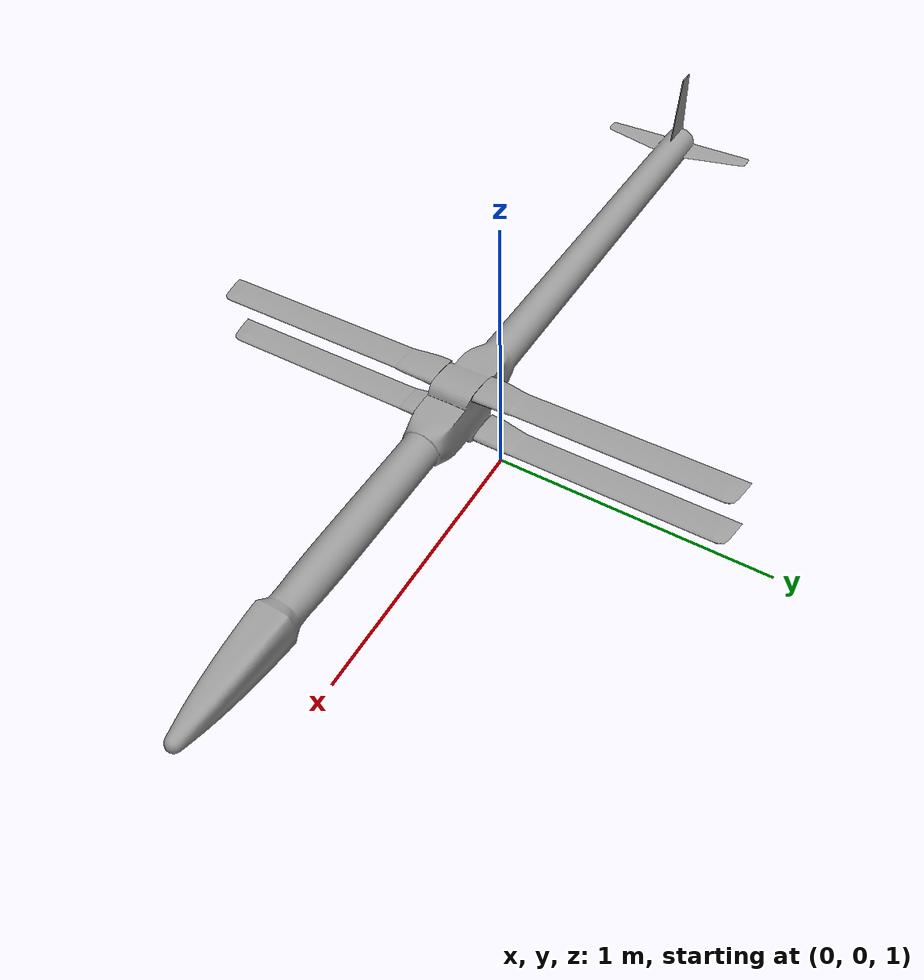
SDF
<?xml version='1.0'?>
<sdf version='1.6'>
  <model name='pitcheron'>

    <link name='base_link'>
      <inertial>
        <mass>47</mass>
        <pose frame=''>0 0 0 0 -0 0</pose>
        <inertia>
          <ixx>0.11644594</ixx>
          <ixy>0</ixy>
          <ixz>0</ixz>
          <iyy>36.28891523</iyy>
          <iyz>0</iyz>
          <izz>36.18768153</izz>
        </inertia>
      </inertial>
      <pose frame=''>0.25 0 1.490810 0 -0 0</pose>
      <gravity>1</gravity>
      <visual name='base_link_visual'>
        <pose frame=''>0 0 0.020000 0 0 3.14159</pose>
        <geometry>
          <mesh>
            <scale>0.001 0.001 0.001</scale>
            <uri>model://pitcheron/mesh/AnalyseModel-Fuselage-003.dae</uri>
          </mesh>
        </geometry>
        <material>
          <script>
            <uri>file://media/materials/scripts/gazebo.material</uri>
            <name>Gazebo/Grey</name>
          </script>
        </material>
        <transparency>0</transparency>
        <cast_shadows>1</cast_shadows>
      </visual>
      <collision name='base_link_collision'>
        <laser_retro>0</laser_retro>
        <max_contacts>10</max_contacts>
        <pose frame=''>0 0 0 0 -0 0</pose>
        <geometry>
          <box>
            <size>3.03932 0.0440676 0.1667</size>
          </box>
        </geometry>
        <surface>
          <friction>
            <ode>
              <mu>1</mu>
              <mu2>1</mu2>
              <fdir1>0 0 0</fdir1>
              <slip1>0</slip1>
              <slip2>0</slip2>
            </ode>
            <torsional>
              <coefficient>1</coefficient>
              <patch_radius>0</patch_radius>
              <surface_radius>0</surface_radius>
              <use_patch_radius>1</use_patch_radius>
              <ode>
                <slip>0</slip>
              </ode>
            </torsional>
          </friction>
          <bounce>
            <restitution_coefficient>0</restitution_coefficient>
            <threshold>1e+06</threshold>
          </bounce>
          <contact>
            <collide_without_contact>0</collide_without_contact>
            <collide_without_contact_bitmask>1</collide_without_contact_bitmask>
            <collide_bitmask>1</collide_bitmask>
            <ode>
              <soft_cfm>0</soft_cfm>
              <soft_erp>0.2</soft_erp>
              <kp>1e+13</kp>
              <kd>1</kd>
              <max_vel>10</max_vel>
              <min_depth>0.01</min_depth>
            </ode>
            <bullet>
              <split_impulse>1</split_impulse>
              <split_impulse_penetration_threshold>-0.01</split_impulse_penetration_threshold>
              <soft_cfm>0</soft_cfm>
              <soft_erp>0.2</soft_erp>
              <kp>1e+13</kp>
              <kd>1</kd>
            </bullet>
          </contact>
        </surface>
      </collision>
      <velocity_decay/>
    </link>

    <!-- control surfaces links -->

    <link name='elevator_link'>
      <inertial>
        <mass>1e-08</mass>
        <inertia>
          <ixx>1e-06</ixx>
          <ixy>0</ixy>
          <iyy>1e-06</iyy>
          <ixz>0</ixz>
          <iyz>0</iyz>
          <izz>1e-06</izz>
        </inertia>
        <pose frame=''>0 0 0 0 -0 0</pose>
      </inertial>
      <pose frame=''>-1.486622 0 1.507310 0 -0 0</pose>
      <visual name='elevator_link_visual'>
        <pose frame=''>0 0 0 0 -0 0</pose>
        <geometry>
          <box>
            <size>0.107408 0.562568 0.044178</size>
          </box>
        </geometry>
        <material>
          <script>
            <uri>file://media/materials/scripts/gazebo.material</uri>
            <name>Gazebo/Grey</name>
          </script>
        </material>
        <transparency>1</transparency>
        <cast_shadows>1</cast_shadows>
      </visual>
    </link>

    <link name='left_wing_bottom_link'>
      <inertial>
        <mass>1e-08</mass>
        <inertia>
          <ixx>1e-06</ixx>
          <ixy>0</ixy>
          <iyy>1e-06</iyy>
          <ixz>0</ixz>
          <iyz>0</iyz>
          <izz>1e-06</izz>
        </inertia>
        <pose frame=''>0 0 0 0 -0 0</pose>
      </inertial>
      <pose frame=''>0.270000 0.110000 1.420000 0 0 0</pose>
      <visual name='left_wing_bottom_link_visual'>
        <pose frame=''>-0.030000 -0.110000 0.090000 0 -0 3.14159</pose>
        <geometry>
          <mesh>
            <scale>0.001 0.001 0.001</scale>
            <uri>model://pitcheron/mesh/AnalyseModel-Left-Bottom-Wing-003.dae</uri>
          </mesh>
        </geometry>
        <material>
          <script>
            <uri>file://media/materials/scripts/gazebo.material</uri>
            <name>Gazebo/Grey</name>
          </script>
        </material>
        <transparency>0</transparency>
        <cast_shadows>1</cast_shadows>
      </visual>
    </link>
    <link name='left_wing_top_link'>
      <inertial>
        <mass>1e-08</mass>
        <inertia>
          <ixx>1e-06</ixx>
          <ixy>0</ixy>
          <iyy>1e-06</iyy>
          <ixz>0</ixz>
          <iyz>0</iyz>
          <izz>1e-06</izz>
        </inertia>
        <pose frame=''>0 0 0 0 -0 0</pose>
      </inertial>
      <pose frame=''>0.270000 0.110000 1.600000 0 0 0</pose>
      <visual name='left_wing_top_link_visual'>
        <pose frame=''>-0.030000 -0.110000 -0.090000 0 -0 3.14159</pose>
        <geometry>
          <mesh>
            <scale>0.001 0.001 0.001</scale>
            <uri>model://pitcheron/mesh/AnalyseModel-Left-Top-Wing-003.dae</uri>
          </mesh>
        </geometry>
        <material>
          <script>
            <uri>file://media/materials/scripts/gazebo.material</uri>
            <name>Gazebo/Grey</name>
          </script>
        </material>
        <transparency>0</transparency>
        <cast_shadows>1</cast_shadows>
      </visual>
    </link>
    <link name='right_wing_bottom_link'>
      <inertial>
        <mass>1e-08</mass>
        <inertia>
          <ixx>1e-06</ixx>
          <ixy>0</ixy>
          <iyy>1e-06</iyy>
          <ixz>0</ixz>
          <iyz>0</iyz>
          <izz>1e-06</izz>
        </inertia>
        <pose frame=''>0 0 0 0 -0 0</pose>
      </inertial>
      <pose frame=''>0.270000 -0.110000 1.420000 0 0 0</pose>
      <visual name='right_wing_bottom_link_visual'>
        <pose frame=''>-0.030000 0.110000 0.090000 0 -0 3.14159</pose>
        <geometry>
          <mesh>
            <scale>0.001 0.001 0.001</scale>
            <uri>model://pitcheron/mesh/AnalyseModel-Right-Bottom-Wing-003.dae</uri>
          </mesh>
        </geometry>
        <material>
          <script>
            <uri>file://media/materials/scripts/gazebo.material</uri>
            <name>Gazebo/Grey</name>
          </script>
        </material>
        <transparency>0</transparency>
        <cast_shadows>1</cast_shadows>
      </visual>
    </link>
    <link name='right_wing_top_link'>
      <inertial>
        <mass>1e-08</mass>
        <inertia>
          <ixx>1e-06</ixx>
          <ixy>0</ixy>
          <iyy>1e-06</iyy>
          <ixz>0</ixz>
          <iyz>0</iyz>
          <izz>1e-06</izz>
        </inertia>
        <pose frame=''>0 0 0 0 -0 0</pose>
      </inertial>
      <pose frame=''>0.270000 -0.110000 1.600000 0 0 0</pose>
      <visual name='right_wing_top_link_visual'>
        <pose frame=''>-0.030000 0.110000 -0.090000 0 -0 3.14159</pose>
        <geometry>
          <mesh>
            <scale>0.001 0.001 0.001</scale>
            <uri>model://pitcheron/mesh/AnalyseModel-Right-Top-Wing-003.dae</uri>
          </mesh>
        </geometry>
        <material>
          <script>
            <uri>file://media/materials/scripts/gazebo.material</uri>
            <name>Gazebo/Grey</name>
          </script>
        </material>
        <transparency>0</transparency>
        <cast_shadows>1</cast_shadows>
      </visual>
    </link>

    <link name='rudder_link'>
      <inertial>
        <mass>1e-08</mass>
        <inertia>
          <ixx>1e-06</ixx>
          <ixy>0</ixy>
          <iyy>1e-06</iyy>
          <ixz>0</ixz>
          <iyz>0</iyz>
          <izz>1e-06</izz>
        </inertia>
        <pose>-0.5 0 0.05 0 0 0 </pose>
      </inertial>
      <pose frame=''>-1.446240 0 1.682760 0 -0 0</pose>
      <visual name='rudder_link_visual'>
        <pose frame=''>0 0 0 0 -0 0</pose>
        <geometry>
          <box>
            <size>0.130490 0.060154 0.221761</size>
          </box>
        </geometry>
        <material>
          <script>
            <uri>file://media/materials/scripts/gazebo.material</uri>
            <name>Gazebo/Grey</name>
          </script>
          <emissive>0 0 0 1</emissive>
        </material>
        <transparency>1</transparency>
        <cast_shadows>1</cast_shadows>
      </visual>
    </link>

    <!-- control surfaces joints -->

    <joint name='elevator_joint' type='fixed'>
      <parent>base_link</parent>
      <child>elevator_link</child>
      <pose frame=''>0 0 0 0 0 0</pose>
      <axis>
        <xyz>0 1 0</xyz>
        <limit>
          <lower>-0.53</lower>
          <upper>0.53</upper>
        </limit>
        <dynamics>
          <damping>1.000</damping>
        </dynamics>
      </axis>
      <physics>
        <ode>
          <implicit_spring_damper>1</implicit_spring_damper>
        </ode>
      </physics>
    </joint>

    <joint name='left_wing_bottom_joint' type='revolute'>
      <parent>base_link</parent>
      <child>left_wing_bottom_link</child>
      <pose frame=''>0 0 0 0 -0 0</pose>
      <axis>
        <xyz>0 1 0</xyz>
        <limit>
          <!-- -15/+15 deg. -->
          <lower>-0.261799</lower>
          <upper>0.261799</upper>
        </limit>
        <dynamics>
          <damping>1.000</damping>
        </dynamics>
      </axis>
      <physics>
        <ode>
          <implicit_spring_damper>1</implicit_spring_damper>
        </ode>
      </physics>
    </joint>
    <joint name='left_wing_top_joint' type='revolute'>
      <parent>base_link</parent>
      <child>left_wing_top_link</child>
      <pose frame=''>0 0 0 0 -0 0</pose>
      <axis>
        <xyz>0 1 0</xyz>
        <limit>
          <!-- -15/+15 deg. -->
          <lower>-0.261799</lower>
          <upper>0.261799</upper>
        </limit>
        <dynamics>
          <damping>1.000</damping>
        </dynamics>
      </axis>
      <physics>
        <ode>
          <implicit_spring_damper>1</implicit_spring_damper>
        </ode>
      </physics>
    </joint>
    <joint name='right_wing_bottom_joint' type='revolute'>
      <parent>base_link</parent>
      <child>right_wing_bottom_link</child>
      <pose frame=''>0 0 0 0 -0 0</pose>
      <axis>
        <xyz>0 1 0</xyz>
        <limit>
          <!-- -15/+15 deg. -->
          <lower>-0.261799</lower>
          <upper>0.261799</upper>
        </limit>
        <dynamics>
          <damping>1.000</damping>
        </dynamics>
      </axis>
      <physics>
        <ode>
          <implicit_spring_damper>1</implicit_spring_damper>
        </ode>
      </physics>
    </joint>
    <joint name='right_wing_top_joint' type='revolute'>
      <parent>base_link</parent>
      <child>right_wing_top_link</child>
      <pose frame=''>0 0 0 0 -0 0</pose>
      <axis>
        <xyz>0 1 0</xyz>
        <limit>
          <!-- -15/+15 deg. -->
          <lower>-0.261799</lower>
          <upper>0.261799</upper>
        </limit>
        <dynamics>
          <damping>1.000</damping>
        </dynamics>
      </axis>
      <physics>
        <ode>
          <implicit_spring_damper>1</implicit_spring_damper>
        </ode>
      </physics>
    </joint>

    <joint name='rudder_joint' type='fixed'>
      <parent>base_link</parent>
      <child>rudder_link</child>
      <pose frame=''>0 0 0 0 -0 0</pose>
      <axis>
        <xyz>0 0 1</xyz>
        <limit>
          <lower>-0.53</lower>
          <upper>0.53</upper>
        </limit>
        <dynamics>
          <damping>1.000</damping>
        </dynamics>
      </axis>
      <physics>
        <ode>
          <implicit_spring_damper>1</implicit_spring_damper>
        </ode>
      </physics>
    </joint>

    <static>0</static>

    <allow_auto_disable>1</allow_auto_disable>

    <!-- control surfaces plugins -->
    <plugin name='left_wing_bottom_plugin' filename='libLiftDragPlugin.so'>
      <!-- 6 degrees angle of attack -->
      <a0>0.10472</a0> <!-- angle of attack in radians as a double precision point value -->
      <cla>4.705845611</cla> <!-- as a coeficient unitless as a double precision point value -->
      <cda>0.3817188071</cda> <!-- as a coeficient unitless as a double precision point value -->
      <cma>0.0</cma> <!-- Coefficient of Moment / alpha slope. unitless as a double precision point value NOTE: this is zero on the lane model-->
      <!-- set to 10 degrees -->
      <alpha_stall>0.1745329252</alpha_stall> <!-- is the angle at which it starts stalling -->
      <cla_stall>-6.606203378</cla_stall> <!-- as a coeficient unitless as a double precision point value -->
      <cda_stall>1.28113363</cda_stall> <!-- as a coeficient unitless as a double precision point value -->
      <cma_stall>0</cma_stall> <!-- Coefficient of Moment / alpha slope. unitless as a double precision point value NOTE: this is zero on the lane model-->
      <cp>0 0.280 0</cp> <!-- link coordinates of center of pressure int Vector 3 (x,y,x) relative to center of link -->
      <area>0.6</area> <!-- area of the link in m^2 as a double precision point value -->
      <air_density>0.81935</air_density>  <!-- air density in kg/m3 as a double precision point value -->
      <forward>1 0 0</forward> <!-- Normally, this is taken as a direction parallel to the chord of the airfoil in zero angle of attack forward flight. (x,y,z)-->
      <upward>0 0 1</upward> <!--Inflow velocity orthogonal to forward and upward vectors is considered flow in the wing sweep direction. (x,y.z)-->
      <link_name>base_link</link_name>
      <control_joint_name>left_wing_bottom_joint</control_joint_name>
      <control_joint_rad_to_cl>-0.5</control_joint_rad_to_cl>
      <robotNamespace></robotNamespace>
      <windSubTopic>world_wind</windSubTopic>
    </plugin>
    <plugin name='left_wing_top_plugin' filename='libLiftDragPlugin.so'>
      <a0>0.10472</a0>
      <cla>4.705845611</cla>
      <cda>0.3817188071</cda>
      <cma>0.0</cma>
      <alpha_stall>0.1745329252</alpha_stall>
      <cla_stall>-6.606203378</cla_stall>
      <cda_stall>1.28113363</cda_stall>
      <cma_stall>0</cma_stall>
      <cp>0 0.280 0</cp>
      <area>0.6</area>
      <air_density>0.81935</air_density>
      <forward>1 0 0</forward>
      <upward>0 0 1</upward>
      <link_name>base_link</link_name>
      <control_joint_name>left_wing_top_joint</control_joint_name>
      <control_joint_rad_to_cl>-0.5</control_joint_rad_to_cl>
      <robotNamespace></robotNamespace>
      <windSubTopic>world_wind</windSubTopic>
    </plugin>
    <plugin name='right_wing_bottom_plugin' filename='libLiftDragPlugin.so'>
      <a0>0.10472</a0>
      <cla>4.705845611</cla>
      <cda>0.3817188071</cda>
      <cma>0.0</cma>
      <alpha_stall>0.1745329252</alpha_stall>
      <cla_stall>-6.606203378</cla_stall>
      <cda_stall>1.28113363</cda_stall>
      <cma_stall>0</cma_stall>
      <cp>0 -0.280 0</cp>
      <area>0.6</area>
      <air_density>0.81935</air_density>
      <forward>1 0 0</forward>
      <upward>0 0 1</upward>
      <link_name>base_link</link_name>
      <control_joint_name>right_wing_bottom_joint</control_joint_name>
      <control_joint_rad_to_cl>-0.5</control_joint_rad_to_cl>
      <robotNamespace></robotNamespace>
      <windSubTopic>world_wind</windSubTopic>
    </plugin>
    <plugin name='right_wing_top_plugin' filename='libLiftDragPlugin.so'>
      <a0>0.10472</a0>
      <cla>4.705845611</cla>
      <cda>0.3817188071</cda>
      <cma>0.0</cma>
      <alpha_stall>0.1745329252</alpha_stall>
      <cla_stall>-6.606203378</cla_stall>
      <cda_stall>1.28113363</cda_stall>
      <cma_stall>0</cma_stall>
      <cp>0 -0.280 0</cp>
      <area>0.6</area>
      <air_density>0.81935</air_density>
      <forward>1 0 0</forward>
      <upward>0 0 1</upward>
      <link_name>base_link</link_name>
      <control_joint_name>right_wing_top_joint</control_joint_name>
      <control_joint_rad_to_cl>-0.5</control_joint_rad_to_cl>
      <robotNamespace></robotNamespace>
      <windSubTopic>world_wind</windSubTopic>
    </plugin>

    <plugin name='rudder_plugin' filename='libLiftDragPlugin.so'>
      <a0>0.0</a0>
      <cla>4.752798721</cla>
      <cda>0.6417112299</cda>
      <cma>0.0</cma>
      <alpha_stall>0.3391428111</alpha_stall>
      <cla_stall>-3.85</cla_stall>
      <cda_stall>-0.9233984055</cda_stall>
      <cma_stall>0</cma_stall>
      <cp>-0.5 0 0.05</cp>
      <area>0.2</area>
      <air_density>0.81935</air_density>
      <forward>1 0 0</forward>
      <upward>0 1 0</upward>
      <link_name>base_link</link_name>
      <control_joint_name>rudder_link</control_joint_name>
      <control_joint_rad_to_cl>4.0</control_joint_rad_to_cl>
      <robotNamespace/>
      <windSubTopic>world_wind</windSubTopic>
    </plugin>
    <plugin name='elevator_plugin' filename='libLiftDragPlugin.so'>
      <a0>0</a0>
      <cla>4.752798721</cla>
      <cda>0.6417112299</cda>
      <cma>0.0</cma>
      <alpha_stall>0.3391428111</alpha_stall>
      <cla_stall>-3.85</cla_stall>
      <cda_stall>-0.9233984055</cda_stall>
      <cma_stall>0</cma_stall>
      <cp>-0.5 0 0</cp>
      <area>0.2</area>
      <air_density>1.2041</air_density>
      <forward>1 0 0</forward>
      <upward>0 0 1</upward>
      <link_name>base_link</link_name>
      <control_joint_name>elevator_joint</control_joint_name>
      <control_joint_rad_to_cl>-4.0</control_joint_rad_to_cl>
      <robotNamespace></robotNamespace>
      <windSubTopic>world_wind</windSubTopic>
    </plugin>

    <!-- sensor and interface links -->
    <link name='pitcheron/imu_link'>
      <pose>0 0 0 0 0 0</pose>
      <inertial>
        <pose>0 0 1.5 0 0 0</pose>
        <mass>0.015</mass>
        <inertia>
          <ixx>1e-05</ixx>
          <ixy>0</ixy>
          <ixz>0</ixz>
          <iyy>1e-05</iyy>
          <iyz>0</iyz>
          <izz>1e-05</izz>
        </inertia>
      </inertial>
    </link>
    <link name='pitcheron/airspeed_link'>
      <pose>0 0 1.5 0 0 0</pose>
      <inertial>
        <pose>0 0 0 0 0 0</pose>
        <mass>0.015</mass>
        <inertia>
          <ixx>1e-05</ixx>
          <ixy>0</ixy>
          <ixz>0</ixz>
          <iyy>1e-05</iyy>
          <iyz>0</iyz>
          <izz>1e-05</izz>
        </inertia>
      </inertial>
    </link>

    <!-- sensor and interface joints -->
    <joint name='pitcheron/imu_joint' type='revolute'>
      <parent>base_link</parent>
      <child>pitcheron/imu_link</child>
      <axis>
        <xyz>1 0 0</xyz>
        <limit>
          <lower>0</lower>
          <upper>0</upper>
          <effort>0</effort>
          <velocity>0</velocity>
        </limit>
        <dynamics>
          <spring_reference>0</spring_reference>
          <spring_stiffness>0</spring_stiffness>
        </dynamics>
        <use_parent_model_frame>1</use_parent_model_frame>
      </axis>
    </joint>
    <joint name='pitcheron/airspeed_joint' type='revolute'>
      <child>pitcheron/airspeed_link</child>
      <parent>base_link</parent>
      <axis>
        <xyz>1 0 0</xyz>
        <limit>
          <lower>0</lower>
          <upper>0</upper>
          <effort>0</effort>
          <velocity>0</velocity>
        </limit>
        <dynamics>
          <spring_reference>0</spring_reference>
          <spring_stiffness>0</spring_stiffness>
        </dynamics>
        <use_parent_model_frame>1</use_parent_model_frame>
      </axis>
    </joint>

    <include>
      <uri>model://gps</uri>
      <pose>0 0 1.5 0 0 0</pose>
      <name>gps</name>
    </include>
    <joint name='gps_joint' type='fixed'>
      <child>gps::link</child>
      <parent>base_link</parent>
    </joint>
    <!-- sensors and interface plugins-->
    <plugin name='gazebo_imu_plugin' filename='libgazebo_imu_plugin.so'>
      <robotNamespace></robotNamespace>
      <linkName>pitcheron/imu_link</linkName>
      <imuTopic>/imu</imuTopic>
      <gyroscopeNoiseDensity>0.0003394</gyroscopeNoiseDensity>
      <gyroscopeRandomWalk>3.8785e-05</gyroscopeRandomWalk>
      <gyroscopeBiasCorrelationTime>1000.0</gyroscopeBiasCorrelationTime>
      <gyroscopeTurnOnBiasSigma>0.0087</gyroscopeTurnOnBiasSigma>
      <accelerometerNoiseDensity>0.004</accelerometerNoiseDensity>
      <accelerometerRandomWalk>0.006</accelerometerRandomWalk>
      <accelerometerBiasCorrelationTime>300.0</accelerometerBiasCorrelationTime>
      <accelerometerTurnOnBiasSigma>0.196</accelerometerTurnOnBiasSigma>
    </plugin>
    <plugin name='airspeed_plugin' filename='libgazebo_airspeed_plugin.so'>
      <robotNamespace/>
      <linkName>pitcheron/airspeed_link</linkName>
    </plugin>
    <plugin name='groundtruth_plugin' filename='libgazebo_groundtruth_plugin.so'>
      <robotNamespace/>
    </plugin>
    <plugin name='magnetometer_plugin' filename='libgazebo_magnetometer_plugin.so'>
      <robotNamespace/>
      <pubRate>100</pubRate>
      <noiseDensity>0.0004</noiseDensity>
      <randomWalk>6.4e-06</randomWalk>
      <biasCorrelationTime>600</biasCorrelationTime>
      <magTopic>/mag</magTopic>
    </plugin>
    <plugin name='barometer_plugin' filename='libgazebo_barometer_plugin.so'>
      <robotNamespace/>
      <pubRate>50</pubRate>
      <baroTopic>/baro</baroTopic>
    </plugin>
    <plugin name='mavlink_interface' filename='libgazebo_mavlink_interface.so'>
      <robotNamespace></robotNamespace>
      <imuSubTopic>/imu</imuSubTopic>
      <magSubTopic>/mag</magSubTopic>
      <baroSubTopic>/baro</baroSubTopic>
      <mavlink_addr>INADDR_ANY</mavlink_addr>
      <mavlink_tcp_port>4560</mavlink_tcp_port>
      <mavlink_udp_port>14560</mavlink_udp_port>
      <serialEnabled>false</serialEnabled>
      <serialDevice>/dev/ttyACM0</serialDevice>
      <baudRate>921600</baudRate>
      <qgc_addr>INADDR_ANY</qgc_addr>
      <qgc_udp_port>14550</qgc_udp_port>
      <sdk_addr>INADDR_ANY</sdk_addr>
      <sdk_udp_port>14540</sdk_udp_port>
      <hil_mode>false</hil_mode>
      <hil_state_level>false</hil_state_level>
      <enable_lockstep>true</enable_lockstep>
      <use_tcp>true</use_tcp>
      <motorSpeedCommandPubTopic>/gazebo/command/motor_speed</motorSpeedCommandPubTopic>
      <control_channels>
        <channel name="left_wing_top">
          <input_index>0</input_index>
          <input_offset>0</input_offset>
          <input_scaling>1</input_scaling>
          <zero_position_disarmed>0</zero_position_disarmed>
          <zero_position_armed>0</zero_position_armed>
          <joint_control_type>position_kinematic</joint_control_type>
          <joint_name>left_wing_top_joint</joint_name>
        </channel>
        <channel name="right_wing_top">
          <input_index>1</input_index>
          <input_offset>0</input_offset>
          <input_scaling>1</input_scaling>
          <zero_position_disarmed>0</zero_position_disarmed>
          <zero_position_armed>0</zero_position_armed>
          <joint_control_type>position_kinematic</joint_control_type>
          <joint_name>right_wing_top_joint</joint_name>
        </channel>
        <channel name="left_wing_bottom">
          <input_index>2</input_index>
          <input_offset>0</input_offset>
          <input_scaling>1</input_scaling>
          <zero_position_disarmed>0</zero_position_disarmed>
          <zero_position_armed>0</zero_position_armed>
          <joint_control_type>position_kinematic</joint_control_type>
          <joint_name>left_wing_bottom_joint</joint_name>
        </channel>
        <channel name="right_wing_bottom">
          <input_index>3</input_index>
          <input_offset>0</input_offset>
          <input_scaling>1</input_scaling>
          <zero_position_disarmed>0</zero_position_disarmed>
          <zero_position_armed>0</zero_position_armed>
          <joint_control_type>position_kinematic</joint_control_type>
          <joint_name>right_wing_bottom_joint</joint_name>
        </channel>
      </control_channels>
    </plugin>

  </model>
</sdf>

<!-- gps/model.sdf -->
<sdf version="1.6">
  <model name="gps">
    <link name="link">
      <pose>0 0 0 0 0 0</pose>
      <inertial>
        <pose>0 0 0 0 0 0</pose>
        <mass>0.015</mass>
        <inertia>
          <ixx>1e-05</ixx>
          <ixy>0</ixy>
          <ixz>0</ixz>
          <iyy>1e-05</iyy>
          <iyz>0</iyz>
          <izz>1e-05</izz>
        </inertia>
      </inertial>
      <visual name="visual">
        <geometry>
          <cylinder>
            <radius>0.01</radius>
            <length>0.002</length>
          </cylinder>
        </geometry>
        <material>
          <script>
            <name>Gazebo/Black</name>
            <uri>file://usr/share/gz/gz-sim8/media/gazebo.material</uri>
          </script>
        </material>
      </visual>
      <sensor name="gps" type="gps">
        <pose>0 0 0 0 0 0</pose>
        <update_rate>5.0</update_rate>
        <always_on>true</always_on>
        <visualize>false</visualize>
        <!-- GpsSensor noise currently not used -->
        <plugin name="gps_plugin" filename="libgazebo_gps_plugin.so">
          <robotNamespace></robotNamespace>
          <gpsNoise>true</gpsNoise>
          <gpsXYRandomWalk>2.0</gpsXYRandomWalk>
          <gpsZRandomWalk>4.0</gpsZRandomWalk>
          <gpsXYNoiseDensity>2.0e-4</gpsXYNoiseDensity>
          <gpsZNoiseDensity>4.0e-4</gpsZNoiseDensity>
          <gpsVXYNoiseDensity>0.2</gpsVXYNoiseDensity>
          <gpsVZNoiseDensity>0.4</gpsVZNoiseDensity>
        </plugin>
      </sensor>
    </link>
  </model>
</sdf>
